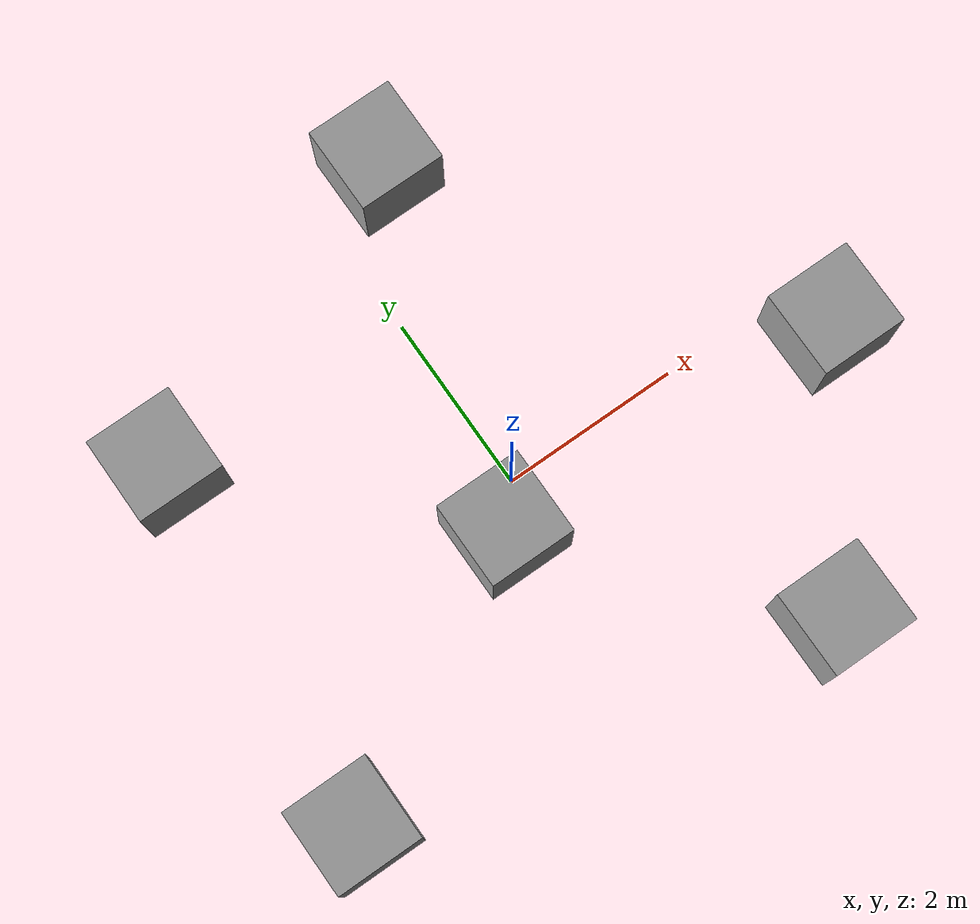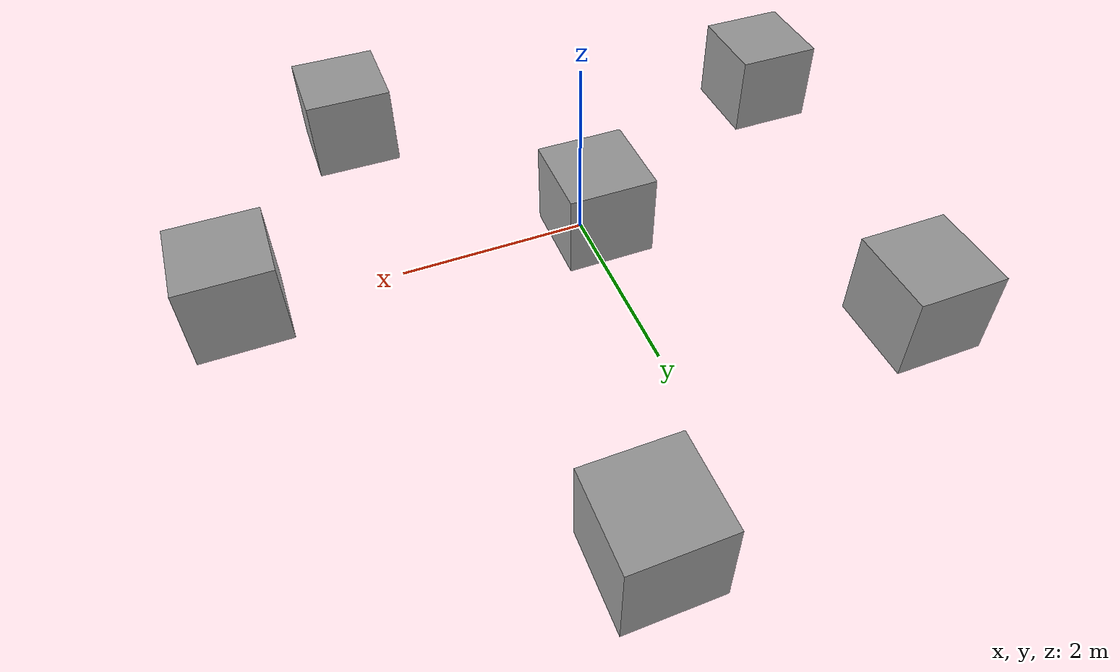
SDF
<?xml version='1.0'?>
<sdf version='1.6'>
  <model name='model'>
    <link name='link_3'>
      <inertial>
        <mass>1</mass>
        <inertia>
          <ixx>0.166667</ixx>
          <ixy>0</ixy>
          <ixz>0</ixz>
          <iyy>0.166667</iyy>
          <iyz>0</iyz>
          <izz>0.166667</izz>
        </inertia>
      </inertial>
      <pose frame=''>3.71358 -0.507182 0 0 -0 0</pose>
      <visual name='visual'>
        <pose frame=''>0 0 0 0 -0 0</pose>
        <geometry>
          <box>
            <size>1 1 1</size>
          </box>
        </geometry>
        <material>
          <lighting>1</lighting>
          <script>
            <uri>file://media/materials/scripts/gazebo.material</uri>
            <name>Gazebo/Grey</name>
          </script>
        </material>
        <transparency>0</transparency>
        <cast_shadows>1</cast_shadows>
      </visual>
      <collision name='collision'>
        <laser_retro>0</laser_retro>
        <max_contacts>10</max_contacts>
        <pose frame=''>0 0 0 0 -0 0</pose>
        <geometry>
          <box>
            <size>1 1 1</size>
          </box>
        </geometry>
        <surface>
          <friction>
            <ode>
              <mu>1</mu>
              <mu2>1</mu2>
              <fdir1>0 0 0</fdir1>
              <slip1>0</slip1>
              <slip2>0</slip2>
            </ode>
            <torsional>
              <coefficient>1</coefficient>
              <patch_radius>0</patch_radius>
              <surface_radius>0</surface_radius>
              <use_patch_radius>1</use_patch_radius>
              <ode>
                <slip>0</slip>
              </ode>
            </torsional>
          </friction>
          <bounce>
            <restitution_coefficient>0</restitution_coefficient>
            <threshold>1e+06</threshold>
          </bounce>
          <contact>
            <collide_without_contact>0</collide_without_contact>
            <collide_without_contact_bitmask>1</collide_without_contact_bitmask>
            <collide_bitmask>1</collide_bitmask>
            <ode>
              <soft_cfm>0</soft_cfm>
              <soft_erp>0.2</soft_erp>
              <kp>1e+13</kp>
              <kd>1</kd>
              <max_vel>0.01</max_vel>
              <min_depth>0</min_depth>
            </ode>
            <bullet>
              <split_impulse>1</split_impulse>
              <split_impulse_penetration_threshold>-0.01</split_impulse_penetration_threshold>
              <soft_cfm>0</soft_cfm>
              <soft_erp>0.2</soft_erp>
              <kp>1e+13</kp>
              <kd>1</kd>
            </bullet>
          </contact>
        </surface>
      </collision>
    </link>
    <link name='link_4'>
      <inertial>
        <mass>1</mass>
        <inertia>
          <ixx>0.166667</ixx>
          <ixy>0</ixy>
          <ixz>0</ixz>
          <iyy>0.166667</iyy>
          <iyz>0</iyz>
          <izz>0.166667</izz>
        </inertia>
      </inertial>
      <pose frame=''>1.95632 -3.05016 0 0 -0 0</pose>
      <visual name='visual'>
        <pose frame=''>0 0 0 0 -0 0</pose>
        <geometry>
          <box>
            <size>1 1 1</size>
          </box>
        </geometry>
        <material>
          <lighting>1</lighting>
          <script>
            <uri>file://media/materials/scripts/gazebo.material</uri>
            <name>Gazebo/Grey</name>
          </script>
        </material>
        <transparency>0</transparency>
        <cast_shadows>1</cast_shadows>
      </visual>
      <collision name='collision'>
        <laser_retro>0</laser_retro>
        <max_contacts>10</max_contacts>
        <pose frame=''>0 0 0 0 -0 0</pose>
        <geometry>
          <box>
            <size>1 1 1</size>
          </box>
        </geometry>
        <surface>
          <friction>
            <ode>
              <mu>1</mu>
              <mu2>1</mu2>
              <fdir1>0 0 0</fdir1>
              <slip1>0</slip1>
              <slip2>0</slip2>
            </ode>
            <torsional>
              <coefficient>1</coefficient>
              <patch_radius>0</patch_radius>
              <surface_radius>0</surface_radius>
              <use_patch_radius>1</use_patch_radius>
              <ode>
                <slip>0</slip>
              </ode>
            </torsional>
          </friction>
          <bounce>
            <restitution_coefficient>0</restitution_coefficient>
            <threshold>1e+06</threshold>
          </bounce>
          <contact>
            <collide_without_contact>0</collide_without_contact>
            <collide_without_contact_bitmask>1</collide_without_contact_bitmask>
            <collide_bitmask>1</collide_bitmask>
            <ode>
              <soft_cfm>0</soft_cfm>
              <soft_erp>0.2</soft_erp>
              <kp>1e+13</kp>
              <kd>1</kd>
              <max_vel>0.01</max_vel>
              <min_depth>0</min_depth>
            </ode>
            <bullet>
              <split_impulse>1</split_impulse>
              <split_impulse_penetration_threshold>-0.01</split_impulse_penetration_threshold>
              <soft_cfm>0</soft_cfm>
              <soft_erp>0.2</soft_erp>
              <kp>1e+13</kp>
              <kd>1</kd>
            </bullet>
          </contact>
        </surface>
      </collision>
    </link>
    <link name='link_5'>
      <inertial>
        <mass>1</mass>
        <inertia>
          <ixx>0.166667</ixx>
          <ixy>0</ixy>
          <ixz>0</ixz>
          <iyy>0.166667</iyy>
          <iyz>0</iyz>
          <izz>0.166667</izz>
        </inertia>
      </inertial>
      <pose frame=''>-0.325927 -0.34772 0 0 -0 0</pose>
      <visual name='visual'>
        <pose frame=''>0 0 0 0 -0 0</pose>
        <geometry>
          <box>
            <size>1 1 1</size>
          </box>
        </geometry>
        <material>
          <lighting>1</lighting>
          <script>
            <uri>file://media/materials/scripts/gazebo.material</uri>
            <name>Gazebo/Grey</name>
          </script>
        </material>
        <transparency>0</transparency>
        <cast_shadows>1</cast_shadows>
      </visual>
      <collision name='collision'>
        <laser_retro>0</laser_retro>
        <max_contacts>10</max_contacts>
        <pose frame=''>0 0 0 0 -0 0</pose>
        <geometry>
          <box>
            <size>1 1 1</size>
          </box>
        </geometry>
        <surface>
          <friction>
            <ode>
              <mu>1</mu>
              <mu2>1</mu2>
              <fdir1>0 0 0</fdir1>
              <slip1>0</slip1>
              <slip2>0</slip2>
            </ode>
            <torsional>
              <coefficient>1</coefficient>
              <patch_radius>0</patch_radius>
              <surface_radius>0</surface_radius>
              <use_patch_radius>1</use_patch_radius>
              <ode>
                <slip>0</slip>
              </ode>
            </torsional>
          </friction>
          <bounce>
            <restitution_coefficient>0</restitution_coefficient>
            <threshold>1e+06</threshold>
          </bounce>
          <contact>
            <collide_without_contact>0</collide_without_contact>
            <collide_without_contact_bitmask>1</collide_without_contact_bitmask>
            <collide_bitmask>1</collide_bitmask>
            <ode>
              <soft_cfm>0</soft_cfm>
              <soft_erp>0.2</soft_erp>
              <kp>1e+13</kp>
              <kd>1</kd>
              <max_vel>0.01</max_vel>
              <min_depth>0</min_depth>
            </ode>
            <bullet>
              <split_impulse>1</split_impulse>
              <split_impulse_penetration_threshold>-0.01</split_impulse_penetration_threshold>
              <soft_cfm>0</soft_cfm>
              <soft_erp>0.2</soft_erp>
              <kp>1e+13</kp>
              <kd>1</kd>
            </bullet>
          </contact>
        </surface>
      </collision>
    </link>
    <link name='link_6'>
      <inertial>
        <mass>1</mass>
        <inertia>
          <ixx>0.166667</ixx>
          <ixy>0</ixy>
          <ixz>0</ixz>
          <iyy>0.166667</iyy>
          <iyz>0</iyz>
          <izz>0.166667</izz>
        </inertia>
      </inertial>
      <pose frame=''>-2.86019 2.23481 0 0 -0 0</pose>
      <visual name='visual'>
        <pose frame=''>0 0 0 0 -0 0</pose>
        <geometry>
          <box>
            <size>1 1 1</size>
          </box>
        </geometry>
        <material>
          <lighting>1</lighting>
          <script>
            <uri>file://media/materials/scripts/gazebo.material</uri>
            <name>Gazebo/Grey</name>
          </script>
        </material>
        <transparency>0</transparency>
        <cast_shadows>1</cast_shadows>
      </visual>
      <collision name='collision'>
        <laser_retro>0</laser_retro>
        <max_contacts>10</max_contacts>
        <pose frame=''>0 0 0 0 -0 0</pose>
        <geometry>
          <box>
            <size>1 1 1</size>
          </box>
        </geometry>
        <surface>
          <friction>
            <ode>
              <mu>1</mu>
              <mu2>1</mu2>
              <fdir1>0 0 0</fdir1>
              <slip1>0</slip1>
              <slip2>0</slip2>
            </ode>
            <torsional>
              <coefficient>1</coefficient>
              <patch_radius>0</patch_radius>
              <surface_radius>0</surface_radius>
              <use_patch_radius>1</use_patch_radius>
              <ode>
                <slip>0</slip>
              </ode>
            </torsional>
          </friction>
          <bounce>
            <restitution_coefficient>0</restitution_coefficient>
            <threshold>1e+06</threshold>
          </bounce>
          <contact>
            <collide_without_contact>0</collide_without_contact>
            <collide_without_contact_bitmask>1</collide_without_contact_bitmask>
            <collide_bitmask>1</collide_bitmask>
            <ode>
              <soft_cfm>0</soft_cfm>
              <soft_erp>0.2</soft_erp>
              <kp>1e+13</kp>
              <kd>1</kd>
              <max_vel>0.01</max_vel>
              <min_depth>0</min_depth>
            </ode>
            <bullet>
              <split_impulse>1</split_impulse>
              <split_impulse_penetration_threshold>-0.01</split_impulse_penetration_threshold>
              <soft_cfm>0</soft_cfm>
              <soft_erp>0.2</soft_erp>
              <kp>1e+13</kp>
              <kd>1</kd>
            </bullet>
          </contact>
        </surface>
      </collision>
    </link>
    <link name='link_7'>
      <inertial>
        <mass>1</mass>
        <inertia>
          <ixx>0.166667</ixx>
          <ixy>0</ixy>
          <ixz>0</ixz>
          <iyy>0.166667</iyy>
          <iyz>0</iyz>
          <izz>0.166667</izz>
        </inertia>
      </inertial>
      <pose frame=''>-3.32119 -1.98807 0 0 -0 0</pose>
      <visual name='visual'>
        <pose frame=''>0 0 0 0 -0 0</pose>
        <geometry>
          <box>
            <size>1 1 1</size>
          </box>
        </geometry>
        <material>
          <lighting>1</lighting>
          <script>
            <uri>file://media/materials/scripts/gazebo.material</uri>
            <name>Gazebo/Grey</name>
          </script>
        </material>
        <transparency>0</transparency>
        <cast_shadows>1</cast_shadows>
      </visual>
      <collision name='collision'>
        <laser_retro>0</laser_retro>
        <max_contacts>10</max_contacts>
        <pose frame=''>0 0 0 0 -0 0</pose>
        <geometry>
          <box>
            <size>1 1 1</size>
          </box>
        </geometry>
        <surface>
          <friction>
            <ode>
              <mu>1</mu>
              <mu2>1</mu2>
              <fdir1>0 0 0</fdir1>
              <slip1>0</slip1>
              <slip2>0</slip2>
            </ode>
            <torsional>
              <coefficient>1</coefficient>
              <patch_radius>0</patch_radius>
              <surface_radius>0</surface_radius>
              <use_patch_radius>1</use_patch_radius>
              <ode>
                <slip>0</slip>
              </ode>
            </torsional>
          </friction>
          <bounce>
            <restitution_coefficient>0</restitution_coefficient>
            <threshold>1e+06</threshold>
          </bounce>
          <contact>
            <collide_without_contact>0</collide_without_contact>
            <collide_without_contact_bitmask>1</collide_without_contact_bitmask>
            <collide_bitmask>1</collide_bitmask>
            <ode>
              <soft_cfm>0</soft_cfm>
              <soft_erp>0.2</soft_erp>
              <kp>1e+13</kp>
              <kd>1</kd>
              <max_vel>0.01</max_vel>
              <min_depth>0</min_depth>
            </ode>
            <bullet>
              <split_impulse>1</split_impulse>
              <split_impulse_penetration_threshold>-0.01</split_impulse_penetration_threshold>
              <soft_cfm>0</soft_cfm>
              <soft_erp>0.2</soft_erp>
              <kp>1e+13</kp>
              <kd>1</kd>
            </bullet>
          </contact>
        </surface>
      </collision>
    </link>
    <link name='link_8'>
      <inertial>
        <mass>1</mass>
        <inertia>
          <ixx>0.166667</ixx>
          <ixy>0</ixy>
          <ixz>0</ixz>
          <iyy>0.166667</iyy>
          <iyz>0</iyz>
          <izz>0.166667</izz>
        </inertia>
      </inertial>
      <pose frame=''>0.837426 3.65831 0 0 -0 0</pose>
      <visual name='visual'>
        <pose frame=''>0 0 0 0 -0 0</pose>
        <geometry>
          <box>
            <size>1 1 1</size>
          </box>
        </geometry>
        <material>
          <lighting>1</lighting>
          <script>
            <uri>file://media/materials/scripts/gazebo.material</uri>
            <name>Gazebo/Grey</name>
          </script>
        </material>
        <transparency>0</transparency>
        <cast_shadows>1</cast_shadows>
      </visual>
      <collision name='collision'>
        <laser_retro>0</laser_retro>
        <max_contacts>10</max_contacts>
        <pose frame=''>0 0 0 0 -0 0</pose>
        <geometry>
          <box>
            <size>1 1 1</size>
          </box>
        </geometry>
        <surface>
          <friction>
            <ode>
              <mu>1</mu>
              <mu2>1</mu2>
              <fdir1>0 0 0</fdir1>
              <slip1>0</slip1>
              <slip2>0</slip2>
            </ode>
            <torsional>
              <coefficient>1</coefficient>
              <patch_radius>0</patch_radius>
              <surface_radius>0</surface_radius>
              <use_patch_radius>1</use_patch_radius>
              <ode>
                <slip>0</slip>
              </ode>
            </torsional>
          </friction>
          <bounce>
            <restitution_coefficient>0</restitution_coefficient>
            <threshold>1e+06</threshold>
          </bounce>
          <contact>
            <collide_without_contact>0</collide_without_contact>
            <collide_without_contact_bitmask>1</collide_without_contact_bitmask>
            <collide_bitmask>1</collide_bitmask>
            <ode>
              <soft_cfm>0</soft_cfm>
              <soft_erp>0.2</soft_erp>
              <kp>1e+13</kp>
              <kd>1</kd>
              <max_vel>0.01</max_vel>
              <min_depth>0</min_depth>
            </ode>
            <bullet>
              <split_impulse>1</split_impulse>
              <split_impulse_penetration_threshold>-0.01</split_impulse_penetration_threshold>
              <soft_cfm>0</soft_cfm>
              <soft_erp>0.2</soft_erp>
              <kp>1e+13</kp>
              <kd>1</kd>
            </bullet>
          </contact>
        </surface>
      </collision>
    </link>
    <static>0</static>
    <allow_auto_disable>1</allow_auto_disable>
  </model>
</sdf>
